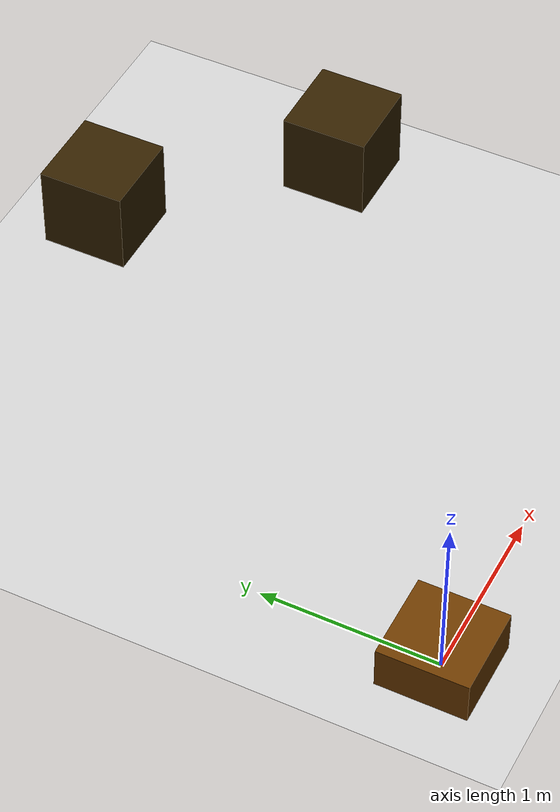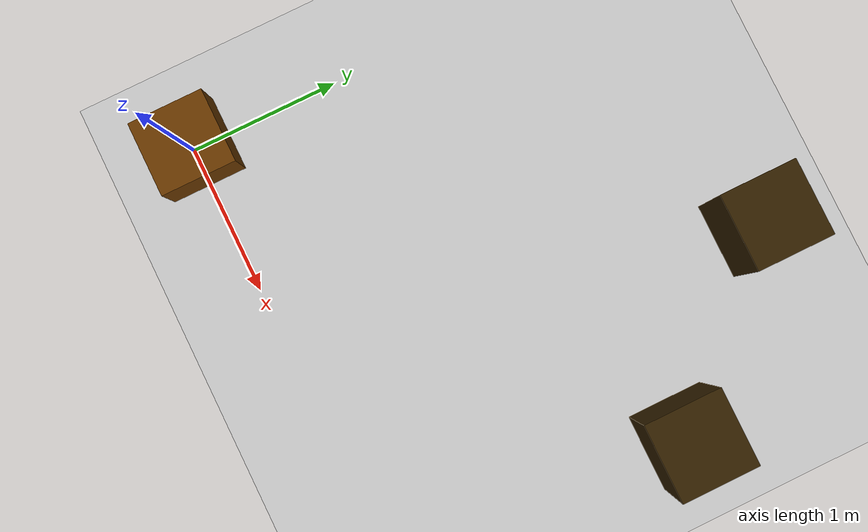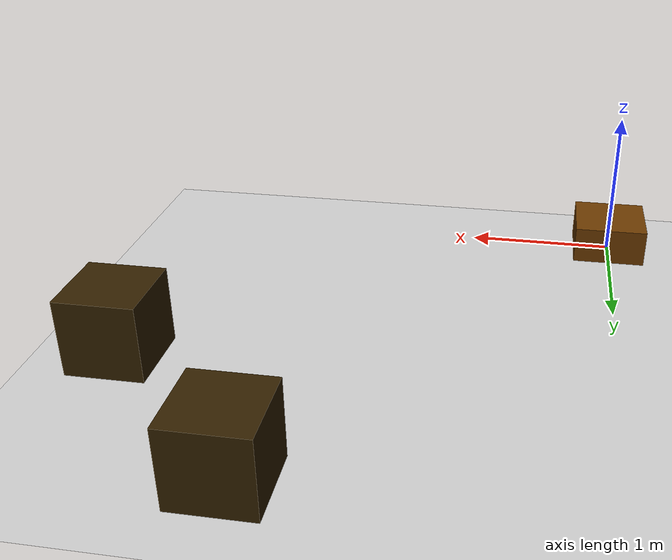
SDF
<?xml version="1.0"?>

<sdf version="1.5">
    <world name="default">
        <!-- Target real time factor is the product of max_step_size and real_time_update_rate -->
        <!-- Negative real_time_update_rate means that Gazebo will run as fast as possible -->
        <physics type="ode">
            <type>world</type>
            <max_step_size>0.001</max_step_size>
            <real_time_update_rate>1000</real_time_update_rate>
            <iters>500</iters>
        </physics>
        <!-- A global light source -->
        <include>
            <uri>model://sun</uri>
        </include>
        <!-- A ground plane -->
        <include>
            <uri>model://ground_plane</uri>
        </include>

        <model name="object">
            <link name="object">
                <inertial>
                    <mass>8</mass>
                    <inertia>
                        <ixx>0.25</ixx>
                        <ixy>0.0</ixy>
                        <ixz>0.0</ixz>
                        <iyy>0.25</iyy>
                        <iyz>0.0</iyz>
                        <izz>1</izz>
                    </inertia>
                </inertial>
                <collision name="static_box_collision">
                    <geometry>
                        <box>
                            <size>0.5 0.5 0.5</size>
                        </box>
                    </geometry>
                    <surface>
                        <friction>
                            <ode>
                                <mu>0.3</mu>
                                <mu2>0.3</mu2>
                            </ode>
                        </friction>
                        <contact>
                            <collide_bitmask>0x03</collide_bitmask>
                        </contact>
                    </surface>
                </collision>
                <visual name="static_box_visual">
                    <geometry>
                        <box>
                            <size>0.5 0.5 0.5</size>
                        </box>
                    </geometry>
                    <material>
                        <ambient>0.2 0.2 0.2 1.0</ambient>
                        <diffuse>.421 0.225 0.0 1.0</diffuse>
                    </material>
                </visual>
            </link>

        </model>

        <model name="obstacle">
            <static>true</static>
            <pose>3 2 0.25 0 0 0</pose>
            <link name="body">
                <inertial>
                    <mass>5</mass>
                    <inertia>
                        <ixx>0.1</ixx>
                        <ixy>0.0</ixy>
                        <ixz>0.0</ixz>
                        <iyy>0.1</iyy>
                        <iyz>0.0</iyz>
                        <izz>0.1</izz>
                    </inertia>
                </inertial>
                <collision name="obstacle_collision">
                    <geometry>
                        <box>
                            <size>0.5 0.5 0.5</size>
                        </box>
                    </geometry>
                    <surface>
                        <friction>
                            <ode>
                                <mu>0.05</mu>
                                <mu2>0.05</mu2>
                            </ode>
                        </friction>
                        <contact>
                            <collide_bitmask>0x03</collide_bitmask>
                        </contact>
                    </surface>
                </collision>
                <visual name="obstacle_visual">
                    <geometry>
                        <box>
                            <size>0.5 0.5 0.5</size>
                        </box>
                    </geometry>
                    <material>
                        <ambient>0.1 0.1 0.1 1.0</ambient>
                        <diffuse>.2 0.125 0.0 1.0</diffuse>
                    </material>
                </visual>
            </link>
        </model>

        <model name="obstacle_2">
            <static>true</static>
            <pose>2 3 0.25 0 0 0</pose>
            <link name="body">
                <inertial>
                    <mass>5</mass>
                    <inertia>
                        <ixx>0.1</ixx>
                        <ixy>0.0</ixy>
                        <ixz>0.0</ixz>
                        <iyy>0.1</iyy>
                        <iyz>0.0</iyz>
                        <izz>0.1</izz>
                    </inertia>
                </inertial>
                <collision name="obstacle_collision">
                    <geometry>
                        <box>
                            <size>0.5 0.5 0.5</size>
                        </box>
                    </geometry>
                    <surface>
                        <friction>
                            <ode>
                                <mu>0.2</mu>
                                <mu2>0.2</mu2>
                            </ode>
                        </friction>
                        <contact>
                            <collide_bitmask>0x03</collide_bitmask>
                        </contact>
                    </surface>
                </collision>
                <visual name="obstacle_visual">
                    <geometry>
                        <box>
                            <size>0.5 0.5 0.5</size>
                        </box>
                    </geometry>
                    <material>
                        <ambient>0.1 0.1 0.1 1.0</ambient>
                        <diffuse>.2 0.125 0.0 1.0</diffuse>
                    </material>
                </visual>
            </link>
        </model>

    </world>
</sdf>
